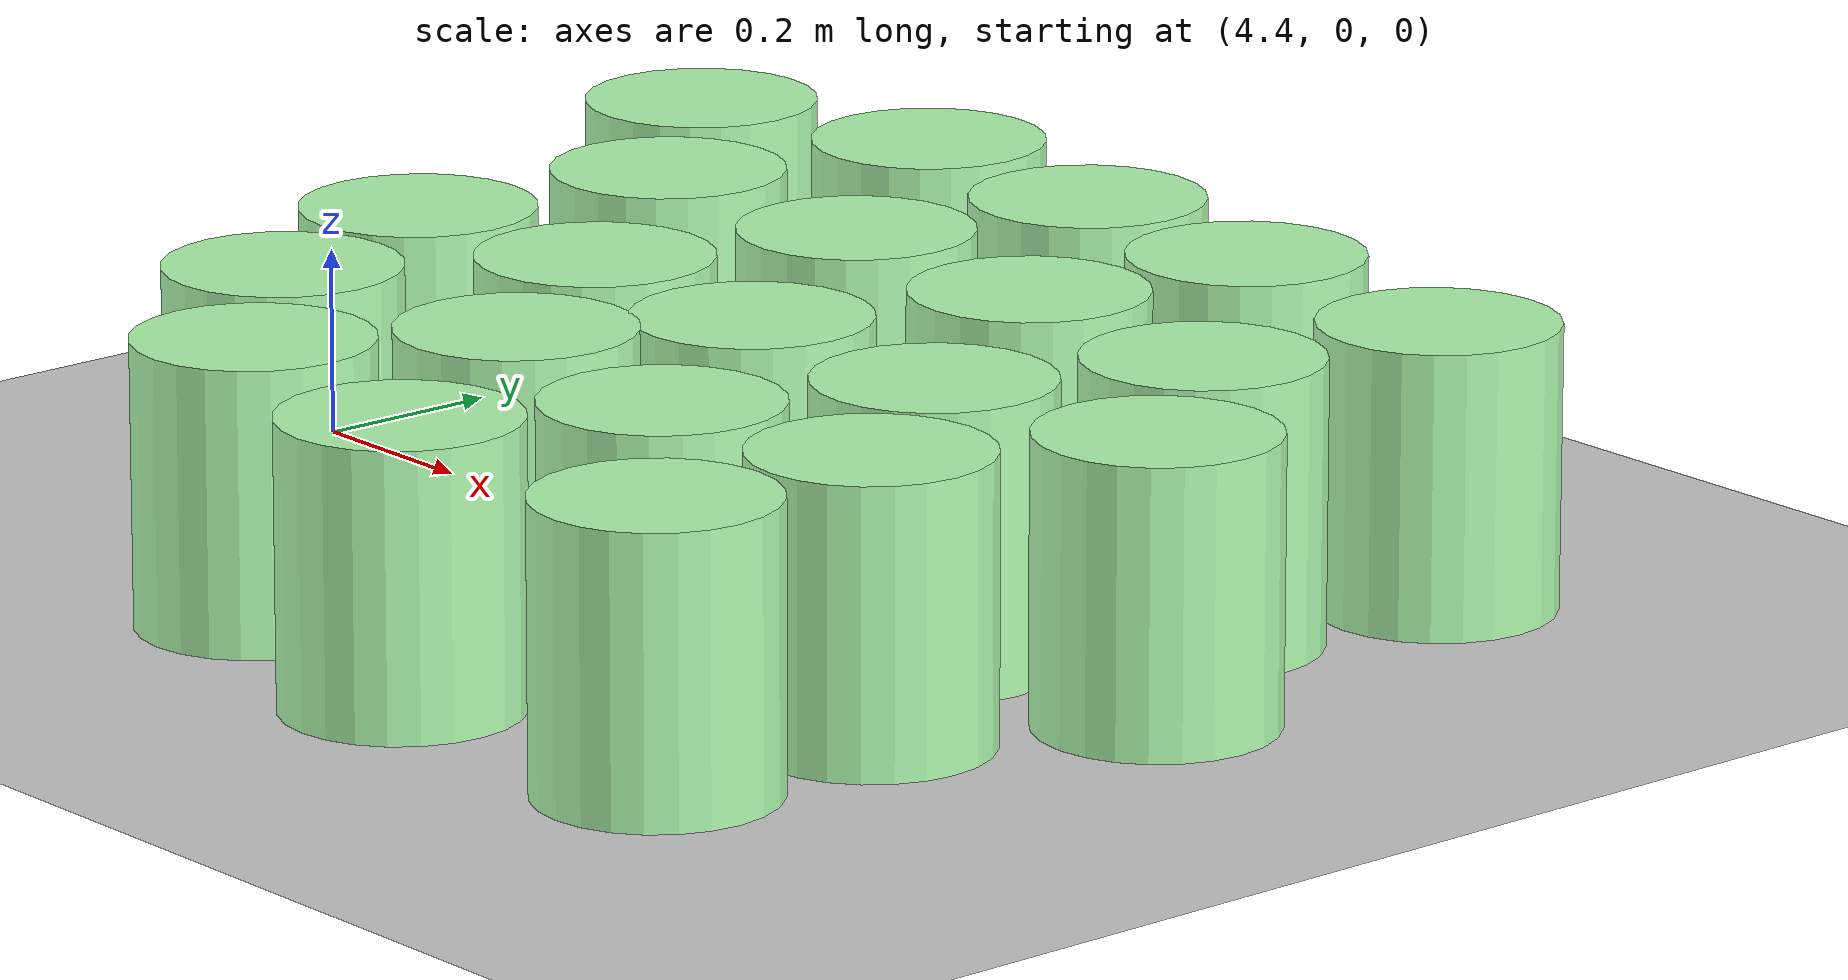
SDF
<sdf version="1.7">
 <world name="default">
  <model name="ground_plane">
   <static>1</static>
   <link name="link">
    <collision name="collision">
     <geometry><plane><normal>0 0 1</normal><size>100 100</size></plane></geometry>
     <surface><friction><ode><mu>100</mu><mu2>50</mu2></ode></friction></surface>
    </collision>
    <visual name="visual">
     <cast_shadows>0</cast_shadows>
     <geometry><plane><normal>0 0 1</normal><size>100 100</size></plane></geometry>
     <material>
      <script><uri>file://media/materials/scripts/gazebo.material</uri><name>Gazebo/Grey</name></script>
     </material>
    </visual>
   </link>
  </model>
  <model name="mhz_y_25_30_clone_0">
   <link name="link">
    <inertial>
     <mass>1</mass>
     <inertia><ixx>0.145833</ixx><ixy>0</ixy><ixz>0</ixz><iyy>0.145833</iyy><iyz>0</iyz><izz>0.125</izz></inertia>
    </inertial>
    <visual name="visual">
     <geometry><cylinder><radius>0.125</radius><length>0.3</length></cylinder></geometry>
     <material>
      <script><name>Gazebo/Grey</name><uri>file://media/materials/scripts/gazebo.material</uri></script>
      <shader type="pixel"><normal_map>__default__</normal_map></shader>
      <ambient>0 1 0 0</ambient>
      <diffuse>0.7 1 0.7 1</diffuse>
      <specular>0.01 0.01 0.01 1</specular>
      <emissive>0 0 0 1</emissive>
     </material>
    </visual>
    <collision name="collision">
     <geometry><cylinder><radius>0.125</radius><length>0.3</length></cylinder></geometry>
     <surface>
      <friction>
       <ode><mu>1</mu><mu2>1</mu2><fdir1>0 0 0</fdir1><slip1>0</slip1><slip2>0</slip2></ode>
       <torsional>
        <coefficient>1</coefficient>
        <patch_radius>0</patch_radius>
        <surface_radius>0</surface_radius>
        <use_patch_radius>1</use_patch_radius>
        <ode><slip>0</slip></ode>
       </torsional>
      </friction>
      <bounce><restitution_coefficient>0</restitution_coefficient><threshold>1e+06</threshold></bounce>
      <contact>
       <collide_without_contact>0</collide_without_contact>
       <collide_without_contact_bitmask>1</collide_without_contact_bitmask>
       <collide_bitmask>1</collide_bitmask>
       <ode>
        <soft_cfm>0</soft_cfm>
        <soft_erp>0.2</soft_erp>
        <kp>1e+13</kp>
        <kd>1</kd>
        <max_vel>0.01</max_vel>
        <min_depth>0</min_depth>
       </ode>
       <bullet>
        <split_impulse>1</split_impulse>
        <split_impulse_penetration_threshold>-0.01</split_impulse_penetration_threshold>
        <soft_cfm>0</soft_cfm>
        <soft_erp>0.2</soft_erp>
        <kp>1e+13</kp>
        <kd>1</kd>
       </bullet>
      </contact>
     </surface>
    </collision>
   </link>
   <static>1</static>
   <pose>4.64884 0.253615 0.14679 0 -0 0</pose>
  </model>
  <model name="mhz_y_25_30_clone_1">
   <link name="link">
    <inertial>
     <mass>1</mass>
     <inertia><ixx>0.145833</ixx><ixy>0</ixy><ixz>0</ixz><iyy>0.145833</iyy><iyz>0</iyz><izz>0.125</izz></inertia>
    </inertial>
    <visual name="visual">
     <geometry><cylinder><radius>0.125</radius><length>0.3</length></cylinder></geometry>
     <material>
      <script><name>Gazebo/Grey</name><uri>file://media/materials/scripts/gazebo.material</uri></script>
      <shader type="pixel"><normal_map>__default__</normal_map></shader>
      <ambient>0 1 0 0</ambient>
      <diffuse>0.7 1 0.7 1</diffuse>
      <specular>0.01 0.01 0.01 1</specular>
      <emissive>0 0 0 1</emissive>
     </material>
    </visual>
    <collision name="collision">
     <geometry><cylinder><radius>0.125</radius><length>0.3</length></cylinder></geometry>
     <surface>
      <friction>
       <ode><mu>1</mu><mu2>1</mu2><fdir1>0 0 0</fdir1><slip1>0</slip1><slip2>0</slip2></ode>
       <torsional>
        <coefficient>1</coefficient>
        <patch_radius>0</patch_radius>
        <surface_radius>0</surface_radius>
        <use_patch_radius>1</use_patch_radius>
        <ode><slip>0</slip></ode>
       </torsional>
      </friction>
      <bounce><restitution_coefficient>0</restitution_coefficient><threshold>1e+06</threshold></bounce>
      <contact>
       <collide_without_contact>0</collide_without_contact>
       <collide_without_contact_bitmask>1</collide_without_contact_bitmask>
       <collide_bitmask>1</collide_bitmask>
       <ode>
        <soft_cfm>0</soft_cfm>
        <soft_erp>0.2</soft_erp>
        <kp>1e+13</kp>
        <kd>1</kd>
        <max_vel>0.01</max_vel>
        <min_depth>0</min_depth>
       </ode>
       <bullet>
        <split_impulse>1</split_impulse>
        <split_impulse_penetration_threshold>-0.01</split_impulse_penetration_threshold>
        <soft_cfm>0</soft_cfm>
        <soft_erp>0.2</soft_erp>
        <kp>1e+13</kp>
        <kd>1</kd>
       </bullet>
      </contact>
     </surface>
    </collision>
   </link>
   <static>1</static>
   <pose>4.59567 -0.038502 0.14679 0 -0 0</pose>
  </model>
  <model name="mhz_y_25_30_clone_2">
   <link name="link">
    <inertial>
     <mass>1</mass>
     <inertia><ixx>0.145833</ixx><ixy>0</ixy><ixz>0</ixz><iyy>0.145833</iyy><iyz>0</iyz><izz>0.125</izz></inertia>
    </inertial>
    <visual name="visual">
     <geometry><cylinder><radius>0.125</radius><length>0.3</length></cylinder></geometry>
     <material>
      <script><name>Gazebo/Grey</name><uri>file://media/materials/scripts/gazebo.material</uri></script>
      <shader type="pixel"><normal_map>__default__</normal_map></shader>
      <ambient>0 1 0 0</ambient>
      <diffuse>0.7 1 0.7 1</diffuse>
      <specular>0.01 0.01 0.01 1</specular>
      <emissive>0 0 0 1</emissive>
     </material>
    </visual>
    <collision name="collision">
     <geometry><cylinder><radius>0.125</radius><length>0.3</length></cylinder></geometry>
     <surface>
      <friction>
       <ode><mu>1</mu><mu2>1</mu2><fdir1>0 0 0</fdir1><slip1>0</slip1><slip2>0</slip2></ode>
       <torsional>
        <coefficient>1</coefficient>
        <patch_radius>0</patch_radius>
        <surface_radius>0</surface_radius>
        <use_patch_radius>1</use_patch_radius>
        <ode><slip>0</slip></ode>
       </torsional>
      </friction>
      <bounce><restitution_coefficient>0</restitution_coefficient><threshold>1e+06</threshold></bounce>
      <contact>
       <collide_without_contact>0</collide_without_contact>
       <collide_without_contact_bitmask>1</collide_without_contact_bitmask>
       <collide_bitmask>1</collide_bitmask>
       <ode>
        <soft_cfm>0</soft_cfm>
        <soft_erp>0.2</soft_erp>
        <kp>1e+13</kp>
        <kd>1</kd>
        <max_vel>0.01</max_vel>
        <min_depth>0</min_depth>
       </ode>
       <bullet>
        <split_impulse>1</split_impulse>
        <split_impulse_penetration_threshold>-0.01</split_impulse_penetration_threshold>
        <soft_cfm>0</soft_cfm>
        <soft_erp>0.2</soft_erp>
        <kp>1e+13</kp>
        <kd>1</kd>
       </bullet>
      </contact>
     </surface>
    </collision>
   </link>
   <static>1</static>
   <pose>4.68343 -0.283629 0.14679 0 -0 0</pose>
  </model>
  <model name="mhz_y_25_30_clone_3">
   <link name="link">
    <inertial>
     <mass>1</mass>
     <inertia><ixx>0.145833</ixx><ixy>0</ixy><ixz>0</ixz><iyy>0.145833</iyy><iyz>0</iyz><izz>0.125</izz></inertia>
    </inertial>
    <visual name="visual">
     <geometry><cylinder><radius>0.125</radius><length>0.3</length></cylinder></geometry>
     <material>
      <script><name>Gazebo/Grey</name><uri>file://media/materials/scripts/gazebo.material</uri></script>
      <shader type="pixel"><normal_map>__default__</normal_map></shader>
      <ambient>0 1 0 0</ambient>
      <diffuse>0.7 1 0.7 1</diffuse>
      <specular>0.01 0.01 0.01 1</specular>
      <emissive>0 0 0 1</emissive>
     </material>
    </visual>
    <collision name="collision">
     <geometry><cylinder><radius>0.125</radius><length>0.3</length></cylinder></geometry>
     <surface>
      <friction>
       <ode><mu>1</mu><mu2>1</mu2><fdir1>0 0 0</fdir1><slip1>0</slip1><slip2>0</slip2></ode>
       <torsional>
        <coefficient>1</coefficient>
        <patch_radius>0</patch_radius>
        <surface_radius>0</surface_radius>
        <use_patch_radius>1</use_patch_radius>
        <ode><slip>0</slip></ode>
       </torsional>
      </friction>
      <bounce><restitution_coefficient>0</restitution_coefficient><threshold>1e+06</threshold></bounce>
      <contact>
       <collide_without_contact>0</collide_without_contact>
       <collide_without_contact_bitmask>1</collide_without_contact_bitmask>
       <collide_bitmask>1</collide_bitmask>
       <ode>
        <soft_cfm>0</soft_cfm>
        <soft_erp>0.2</soft_erp>
        <kp>1e+13</kp>
        <kd>1</kd>
        <max_vel>0.01</max_vel>
        <min_depth>0</min_depth>
       </ode>
       <bullet>
        <split_impulse>1</split_impulse>
        <split_impulse_penetration_threshold>-0.01</split_impulse_penetration_threshold>
        <soft_cfm>0</soft_cfm>
        <soft_erp>0.2</soft_erp>
        <kp>1e+13</kp>
        <kd>1</kd>
       </bullet>
      </contact>
     </surface>
    </collision>
   </link>
   <static>1</static>
   <pose>4.8605 -0.017962 0.14679 0 -0 0</pose>
  </model>
  <model name="mhz_y_25_30_clone_4">
   <link name="link">
    <inertial>
     <mass>1</mass>
     <inertia><ixx>0.145833</ixx><ixy>0</ixy><ixz>0</ixz><iyy>0.145833</iyy><iyz>0</iyz><izz>0.125</izz></inertia>
    </inertial>
    <visual name="visual">
     <geometry><cylinder><radius>0.125</radius><length>0.3</length></cylinder></geometry>
     <material>
      <script><name>Gazebo/Grey</name><uri>file://media/materials/scripts/gazebo.material</uri></script>
      <shader type="pixel"><normal_map>__default__</normal_map></shader>
      <ambient>0 1 0 0</ambient>
      <diffuse>0.7 1 0.7 1</diffuse>
      <specular>0.01 0.01 0.01 1</specular>
      <emissive>0 0 0 1</emissive>
     </material>
    </visual>
    <collision name="collision">
     <geometry><cylinder><radius>0.125</radius><length>0.3</length></cylinder></geometry>
     <surface>
      <friction>
       <ode><mu>1</mu><mu2>1</mu2><fdir1>0 0 0</fdir1><slip1>0</slip1><slip2>0</slip2></ode>
       <torsional>
        <coefficient>1</coefficient>
        <patch_radius>0</patch_radius>
        <surface_radius>0</surface_radius>
        <use_patch_radius>1</use_patch_radius>
        <ode><slip>0</slip></ode>
       </torsional>
      </friction>
      <bounce><restitution_coefficient>0</restitution_coefficient><threshold>1e+06</threshold></bounce>
      <contact>
       <collide_without_contact>0</collide_without_contact>
       <collide_without_contact_bitmask>1</collide_without_contact_bitmask>
       <collide_bitmask>1</collide_bitmask>
       <ode>
        <soft_cfm>0</soft_cfm>
        <soft_erp>0.2</soft_erp>
        <kp>1e+13</kp>
        <kd>1</kd>
        <max_vel>0.01</max_vel>
        <min_depth>0</min_depth>
       </ode>
       <bullet>
        <split_impulse>1</split_impulse>
        <split_impulse_penetration_threshold>-0.01</split_impulse_penetration_threshold>
        <soft_cfm>0</soft_cfm>
        <soft_erp>0.2</soft_erp>
        <kp>1e+13</kp>
        <kd>1</kd>
       </bullet>
      </contact>
     </surface>
    </collision>
   </link>
   <static>1</static>
   <pose>4.95601 0.250924 0.14679 0 -0 0</pose>
  </model>
  <model name="mhz_y_25_30_clone_5">
   <link name="link">
    <inertial>
     <mass>1</mass>
     <inertia><ixx>0.145833</ixx><ixy>0</ixy><ixz>0</ixz><iyy>0.145833</iyy><iyz>0</iyz><izz>0.125</izz></inertia>
    </inertial>
    <visual name="visual">
     <geometry><cylinder><radius>0.125</radius><length>0.3</length></cylinder></geometry>
     <material>
      <script><name>Gazebo/Grey</name><uri>file://media/materials/scripts/gazebo.material</uri></script>
      <shader type="pixel"><normal_map>__default__</normal_map></shader>
      <ambient>0 1 0 0</ambient>
      <diffuse>0.7 1 0.7 1</diffuse>
      <specular>0.01 0.01 0.01 1</specular>
      <emissive>0 0 0 1</emissive>
     </material>
    </visual>
    <collision name="collision">
     <geometry><cylinder><radius>0.125</radius><length>0.3</length></cylinder></geometry>
     <surface>
      <friction>
       <ode><mu>1</mu><mu2>1</mu2><fdir1>0 0 0</fdir1><slip1>0</slip1><slip2>0</slip2></ode>
       <torsional>
        <coefficient>1</coefficient>
        <patch_radius>0</patch_radius>
        <surface_radius>0</surface_radius>
        <use_patch_radius>1</use_patch_radius>
        <ode><slip>0</slip></ode>
       </torsional>
      </friction>
      <bounce><restitution_coefficient>0</restitution_coefficient><threshold>1e+06</threshold></bounce>
      <contact>
       <collide_without_contact>0</collide_without_contact>
       <collide_without_contact_bitmask>1</collide_without_contact_bitmask>
       <collide_bitmask>1</collide_bitmask>
       <ode>
        <soft_cfm>0</soft_cfm>
        <soft_erp>0.2</soft_erp>
        <kp>1e+13</kp>
        <kd>1</kd>
        <max_vel>0.01</max_vel>
        <min_depth>0</min_depth>
       </ode>
       <bullet>
        <split_impulse>1</split_impulse>
        <split_impulse_penetration_threshold>-0.01</split_impulse_penetration_threshold>
        <soft_cfm>0</soft_cfm>
        <soft_erp>0.2</soft_erp>
        <kp>1e+13</kp>
        <kd>1</kd>
       </bullet>
      </contact>
     </surface>
    </collision>
   </link>
   <static>1</static>
   <pose>5.01663 -0.24731 0.14679 0 -0 0</pose>
  </model>
  <model name="mhz_y_25_30_clone_6">
   <link name="link">
    <inertial>
     <mass>1</mass>
     <inertia><ixx>0.145833</ixx><ixy>0</ixy><ixz>0</ixz><iyy>0.145833</iyy><iyz>0</iyz><izz>0.125</izz></inertia>
    </inertial>
    <visual name="visual">
     <geometry><cylinder><radius>0.125</radius><length>0.3</length></cylinder></geometry>
     <material>
      <script><name>Gazebo/Grey</name><uri>file://media/materials/scripts/gazebo.material</uri></script>
      <shader type="pixel"><normal_map>__default__</normal_map></shader>
      <ambient>0 1 0 0</ambient>
      <diffuse>0.7 1 0.7 1</diffuse>
      <specular>0.01 0.01 0.01 1</specular>
      <emissive>0 0 0 1</emissive>
     </material>
    </visual>
    <collision name="collision">
     <geometry><cylinder><radius>0.125</radius><length>0.3</length></cylinder></geometry>
     <surface>
      <friction>
       <ode><mu>1</mu><mu2>1</mu2><fdir1>0 0 0</fdir1><slip1>0</slip1><slip2>0</slip2></ode>
       <torsional>
        <coefficient>1</coefficient>
        <patch_radius>0</patch_radius>
        <surface_radius>0</surface_radius>
        <use_patch_radius>1</use_patch_radius>
        <ode><slip>0</slip></ode>
       </torsional>
      </friction>
      <bounce><restitution_coefficient>0</restitution_coefficient><threshold>1e+06</threshold></bounce>
      <contact>
       <collide_without_contact>0</collide_without_contact>
       <collide_without_contact_bitmask>1</collide_without_contact_bitmask>
       <collide_bitmask>1</collide_bitmask>
       <ode>
        <soft_cfm>0</soft_cfm>
        <soft_erp>0.2</soft_erp>
        <kp>1e+13</kp>
        <kd>1</kd>
        <max_vel>0.01</max_vel>
        <min_depth>0</min_depth>
       </ode>
       <bullet>
        <split_impulse>1</split_impulse>
        <split_impulse_penetration_threshold>-0.01</split_impulse_penetration_threshold>
        <soft_cfm>0</soft_cfm>
        <soft_erp>0.2</soft_erp>
        <kp>1e+13</kp>
        <kd>1</kd>
       </bullet>
      </contact>
     </surface>
    </collision>
   </link>
   <static>1</static>
   <pose>5.13701 -0.040934 0.14679 0 -0 0</pose>
  </model>
  <model name="mhz_y_25_30_clone_7">
   <link name="link">
    <inertial>
     <mass>1</mass>
     <inertia><ixx>0.145833</ixx><ixy>0</ixy><ixz>0</ixz><iyy>0.145833</iyy><iyz>0</iyz><izz>0.125</izz></inertia>
    </inertial>
    <visual name="visual">
     <geometry><cylinder><radius>0.125</radius><length>0.3</length></cylinder></geometry>
     <material>
      <script><name>Gazebo/Grey</name><uri>file://media/materials/scripts/gazebo.material</uri></script>
      <shader type="pixel"><normal_map>__default__</normal_map></shader>
      <ambient>0 1 0 0</ambient>
      <diffuse>0.7 1 0.7 1</diffuse>
      <specular>0.01 0.01 0.01 1</specular>
      <emissive>0 0 0 1</emissive>
     </material>
    </visual>
    <collision name="collision">
     <geometry><cylinder><radius>0.125</radius><length>0.3</length></cylinder></geometry>
     <surface>
      <friction>
       <ode><mu>1</mu><mu2>1</mu2><fdir1>0 0 0</fdir1><slip1>0</slip1><slip2>0</slip2></ode>
       <torsional>
        <coefficient>1</coefficient>
        <patch_radius>0</patch_radius>
        <surface_radius>0</surface_radius>
        <use_patch_radius>1</use_patch_radius>
        <ode><slip>0</slip></ode>
       </torsional>
      </friction>
      <bounce><restitution_coefficient>0</restitution_coefficient><threshold>1e+06</threshold></bounce>
      <contact>
       <collide_without_contact>0</collide_without_contact>
       <collide_without_contact_bitmask>1</collide_without_contact_bitmask>
       <collide_bitmask>1</collide_bitmask>
       <ode>
        <soft_cfm>0</soft_cfm>
        <soft_erp>0.2</soft_erp>
        <kp>1e+13</kp>
        <kd>1</kd>
        <max_vel>0.01</max_vel>
        <min_depth>0</min_depth>
       </ode>
       <bullet>
        <split_impulse>1</split_impulse>
        <split_impulse_penetration_threshold>-0.01</split_impulse_penetration_threshold>
        <soft_cfm>0</soft_cfm>
        <soft_erp>0.2</soft_erp>
        <kp>1e+13</kp>
        <kd>1</kd>
       </bullet>
      </contact>
     </surface>
    </collision>
   </link>
   <static>1</static>
   <pose>5.24581 0.233324 0.14679 0 -0 0</pose>
  </model>
  <model name="mhz_y_25_30_clone_8">
   <link name="link">
    <inertial>
     <mass>1</mass>
     <inertia><ixx>0.145833</ixx><ixy>0</ixy><ixz>0</ixz><iyy>0.145833</iyy><iyz>0</iyz><izz>0.125</izz></inertia>
    </inertial>
    <visual name="visual">
     <geometry><cylinder><radius>0.125</radius><length>0.3</length></cylinder></geometry>
     <material>
      <script><name>Gazebo/Grey</name><uri>file://media/materials/scripts/gazebo.material</uri></script>
      <shader type="pixel"><normal_map>__default__</normal_map></shader>
      <ambient>0 1 0 0</ambient>
      <diffuse>0.7 1 0.7 1</diffuse>
      <specular>0.01 0.01 0.01 1</specular>
      <emissive>0 0 0 1</emissive>
     </material>
    </visual>
    <collision name="collision">
     <geometry><cylinder><radius>0.125</radius><length>0.3</length></cylinder></geometry>
     <surface>
      <friction>
       <ode><mu>1</mu><mu2>1</mu2><fdir1>0 0 0</fdir1><slip1>0</slip1><slip2>0</slip2></ode>
       <torsional>
        <coefficient>1</coefficient>
        <patch_radius>0</patch_radius>
        <surface_radius>0</surface_radius>
        <use_patch_radius>1</use_patch_radius>
        <ode><slip>0</slip></ode>
       </torsional>
      </friction>
      <bounce><restitution_coefficient>0</restitution_coefficient><threshold>1e+06</threshold></bounce>
      <contact>
       <collide_without_contact>0</collide_without_contact>
       <collide_without_contact_bitmask>1</collide_without_contact_bitmask>
       <collide_bitmask>1</collide_bitmask>
       <ode>
        <soft_cfm>0</soft_cfm>
        <soft_erp>0.2</soft_erp>
        <kp>1e+13</kp>
        <kd>1</kd>
        <max_vel>0.01</max_vel>
        <min_depth>0</min_depth>
       </ode>
       <bullet>
        <split_impulse>1</split_impulse>
        <split_impulse_penetration_threshold>-0.01</split_impulse_penetration_threshold>
        <soft_cfm>0</soft_cfm>
        <soft_erp>0.2</soft_erp>
        <kp>1e+13</kp>
        <kd>1</kd>
       </bullet>
      </contact>
     </surface>
    </collision>
   </link>
   <static>1</static>
   <pose>5.42605 -0.04916 0.14679 0 -0 0</pose>
  </model>
  <model name="mhz_y_25_30_clone_9">
   <link name="link">
    <inertial>
     <mass>1</mass>
     <inertia><ixx>0.145833</ixx><ixy>0</ixy><ixz>0</ixz><iyy>0.145833</iyy><iyz>0</iyz><izz>0.125</izz></inertia>
    </inertial>
    <visual name="visual">
     <geometry><cylinder><radius>0.125</radius><length>0.3</length></cylinder></geometry>
     <material>
      <script><name>Gazebo/Grey</name><uri>file://media/materials/scripts/gazebo.material</uri></script>
      <shader type="pixel"><normal_map>__default__</normal_map></shader>
      <ambient>0 1 0 0</ambient>
      <diffuse>0.7 1 0.7 1</diffuse>
      <specular>0.01 0.01 0.01 1</specular>
      <emissive>0 0 0 1</emissive>
     </material>
    </visual>
    <collision name="collision">
     <geometry><cylinder><radius>0.125</radius><length>0.3</length></cylinder></geometry>
     <surface>
      <friction>
       <ode><mu>1</mu><mu2>1</mu2><fdir1>0 0 0</fdir1><slip1>0</slip1><slip2>0</slip2></ode>
       <torsional>
        <coefficient>1</coefficient>
        <patch_radius>0</patch_radius>
        <surface_radius>0</surface_radius>
        <use_patch_radius>1</use_patch_radius>
        <ode><slip>0</slip></ode>
       </torsional>
      </friction>
      <bounce><restitution_coefficient>0</restitution_coefficient><threshold>1e+06</threshold></bounce>
      <contact>
       <collide_without_contact>0</collide_without_contact>
       <collide_without_contact_bitmask>1</collide_without_contact_bitmask>
       <collide_bitmask>1</collide_bitmask>
       <ode>
        <soft_cfm>0</soft_cfm>
        <soft_erp>0.2</soft_erp>
        <kp>1e+13</kp>
        <kd>1</kd>
        <max_vel>0.01</max_vel>
        <min_depth>0</min_depth>
       </ode>
       <bullet>
        <split_impulse>1</split_impulse>
        <split_impulse_penetration_threshold>-0.01</split_impulse_penetration_threshold>
        <soft_cfm>0</soft_cfm>
        <soft_erp>0.2</soft_erp>
        <kp>1e+13</kp>
        <kd>1</kd>
       </bullet>
      </contact>
     </surface>
    </collision>
   </link>
   <static>1</static>
   <pose>5.53978 0.204382 0.14679 0 -0 0</pose>
  </model>
  <model name="mhz_y_25_30_clone_10">
   <link name="link">
    <inertial>
     <mass>1</mass>
     <inertia><ixx>0.145833</ixx><ixy>0</ixy><ixz>0</ixz><iyy>0.145833</iyy><iyz>0</iyz><izz>0.125</izz></inertia>
    </inertial>
    <visual name="visual">
     <geometry><cylinder><radius>0.125</radius><length>0.3</length></cylinder></geometry>
     <material>
      <script><name>Gazebo/Grey</name><uri>file://media/materials/scripts/gazebo.material</uri></script>
      <shader type="pixel"><normal_map>__default__</normal_map></shader>
      <ambient>0 1 0 0</ambient>
      <diffuse>0.7 1 0.7 1</diffuse>
      <specular>0.01 0.01 0.01 1</specular>
      <emissive>0 0 0 1</emissive>
     </material>
    </visual>
    <collision name="collision">
     <geometry><cylinder><radius>0.125</radius><length>0.3</length></cylinder></geometry>
     <surface>
      <friction>
       <ode><mu>1</mu><mu2>1</mu2><fdir1>0 0 0</fdir1><slip1>0</slip1><slip2>0</slip2></ode>
       <torsional>
        <coefficient>1</coefficient>
        <patch_radius>0</patch_radius>
        <surface_radius>0</surface_radius>
        <use_patch_radius>1</use_patch_radius>
        <ode><slip>0</slip></ode>
       </torsional>
      </friction>
      <bounce><restitution_coefficient>0</restitution_coefficient><threshold>1e+06</threshold></bounce>
      <contact>
       <collide_without_contact>0</collide_without_contact>
       <collide_without_contact_bitmask>1</collide_without_contact_bitmask>
       <collide_bitmask>1</collide_bitmask>
       <ode>
        <soft_cfm>0</soft_cfm>
        <soft_erp>0.2</soft_erp>
        <kp>1e+13</kp>
        <kd>1</kd>
        <max_vel>0.01</max_vel>
        <min_depth>0</min_depth>
       </ode>
       <bullet>
        <split_impulse>1</split_impulse>
        <split_impulse_penetration_threshold>-0.01</split_impulse_penetration_threshold>
        <soft_cfm>0</soft_cfm>
        <soft_erp>0.2</soft_erp>
        <kp>1e+13</kp>
        <kd>1</kd>
       </bullet>
      </contact>
     </surface>
    </collision>
   </link>
   <static>1</static>
   <pose>5.31226 -0.302685 0.14679 0 -0 0</pose>
  </model>
  <model name="mhz_y_25_30_clone_11">
   <link name="link">
    <inertial>
     <mass>1</mass>
     <inertia><ixx>0.145833</ixx><ixy>0</ixy><ixz>0</ixz><iyy>0.145833</iyy><iyz>0</iyz><izz>0.125</izz></inertia>
    </inertial>
    <visual name="visual">
     <geometry><cylinder><radius>0.125</radius><length>0.3</length></cylinder></geometry>
     <material>
      <script><name>Gazebo/Grey</name><uri>file://media/materials/scripts/gazebo.material</uri></script>
      <shader type="pixel"><normal_map>__default__</normal_map></shader>
      <ambient>0 1 0 0</ambient>
      <diffuse>0.7 1 0.7 1</diffuse>
      <specular>0.01 0.01 0.01 1</specular>
      <emissive>0 0 0 1</emissive>
     </material>
    </visual>
    <collision name="collision">
     <geometry><cylinder><radius>0.125</radius><length>0.3</length></cylinder></geometry>
     <surface>
      <friction>
       <ode><mu>1</mu><mu2>1</mu2><fdir1>0 0 0</fdir1><slip1>0</slip1><slip2>0</slip2></ode>
       <torsional>
        <coefficient>1</coefficient>
        <patch_radius>0</patch_radius>
        <surface_radius>0</surface_radius>
        <use_patch_radius>1</use_patch_radius>
        <ode><slip>0</slip></ode>
       </torsional>
      </friction>
      <bounce><restitution_coefficient>0</restitution_coefficient><threshold>1e+06</threshold></bounce>
      <contact>
       <collide_without_contact>0</collide_without_contact>
       <collide_without_contact_bitmask>1</collide_without_contact_bitmask>
       <collide_bitmask>1</collide_bitmask>
       <ode>
        <soft_cfm>0</soft_cfm>
        <soft_erp>0.2</soft_erp>
        <kp>1e+13</kp>
        <kd>1</kd>
        <max_vel>0.01</max_vel>
        <min_depth>0</min_depth>
       </ode>
       <bullet>
        <split_impulse>1</split_impulse>
        <split_impulse_penetration_threshold>-0.01</split_impulse_penetration_threshold>
        <soft_cfm>0</soft_cfm>
        <soft_erp>0.2</soft_erp>
        <kp>1e+13</kp>
        <kd>1</kd>
       </bullet>
      </contact>
     </surface>
    </collision>
   </link>
   <static>1</static>
   <pose>5.5742 -0.257618 0.14679 0 -0 0</pose>
  </model>
  <model name="mhz_y_25_30_clone_12">
   <link name="link">
    <inertial>
     <mass>1</mass>
     <inertia><ixx>0.145833</ixx><ixy>0</ixy><ixz>0</ixz><iyy>0.145833</iyy><iyz>0</iyz><izz>0.125</izz></inertia>
    </inertial>
    <visual name="visual">
     <geometry><cylinder><radius>0.125</radius><length>0.3</length></cylinder></geometry>
     <material>
      <script><name>Gazebo/Grey</name><uri>file://media/materials/scripts/gazebo.material</uri></script>
      <shader type="pixel"><normal_map>__default__</normal_map></shader>
      <ambient>0 1 0 0</ambient>
      <diffuse>0.7 1 0.7 1</diffuse>
      <specular>0.01 0.01 0.01 1</specular>
      <emissive>0 0 0 1</emissive>
     </material>
    </visual>
    <collision name="collision">
     <geometry><cylinder><radius>0.125</radius><length>0.3</length></cylinder></geometry>
     <surface>
      <friction>
       <ode><mu>1</mu><mu2>1</mu2><fdir1>0 0 0</fdir1><slip1>0</slip1><slip2>0</slip2></ode>
       <torsional>
        <coefficient>1</coefficient>
        <patch_radius>0</patch_radius>
        <surface_radius>0</surface_radius>
        <use_patch_radius>1</use_patch_radius>
        <ode><slip>0</slip></ode>
       </torsional>
      </friction>
      <bounce><restitution_coefficient>0</restitution_coefficient><threshold>1e+06</threshold></bounce>
      <contact>
       <collide_without_contact>0</collide_without_contact>
       <collide_without_contact_bitmask>1</collide_without_contact_bitmask>
       <collide_bitmask>1</collide_bitmask>
       <ode>
        <soft_cfm>0</soft_cfm>
        <soft_erp>0.2</soft_erp>
        <kp>1e+13</kp>
        <kd>1</kd>
        <max_vel>0.01</max_vel>
        <min_depth>0</min_depth>
       </ode>
       <bullet>
        <split_impulse>1</split_impulse>
        <split_impulse_penetration_threshold>-0.01</split_impulse_penetration_threshold>
        <soft_cfm>0</soft_cfm>
        <soft_erp>0.2</soft_erp>
        <kp>1e+13</kp>
        <kd>1</kd>
       </bullet>
      </contact>
     </surface>
    </collision>
   </link>
   <static>1</static>
   <pose>5.70709 -0.005619 0.14679 0 -0 0</pose>
  </model>
  <model name="mhz_y_25_30_clone_14">
   <link name="link">
    <inertial>
     <mass>1</mass>
     <inertia><ixx>0.145833</ixx><ixy>0</ixy><ixz>0</ixz><iyy>0.145833</iyy><iyz>0</iyz><izz>0.125</izz></inertia>
    </inertial>
    <visual name="visual">
     <geometry><cylinder><radius>0.125</radius><length>0.3</length></cylinder></geometry>
     <material>
      <script><name>Gazebo/Grey</name><uri>file://media/materials/scripts/gazebo.material</uri></script>
      <shader type="pixel"><normal_map>__default__</normal_map></shader>
      <ambient>0 1 0 0</ambient>
      <diffuse>0.7 1 0.7 1</diffuse>
      <specular>0.01 0.01 0.01 1</specular>
      <emissive>0 0 0 1</emissive>
     </material>
    </visual>
    <collision name="collision">
     <geometry><cylinder><radius>0.125</radius><length>0.3</length></cylinder></geometry>
     <surface>
      <friction>
       <ode><mu>1</mu><mu2>1</mu2><fdir1>0 0 0</fdir1><slip1>0</slip1><slip2>0</slip2></ode>
       <torsional>
        <coefficient>1</coefficient>
        <patch_radius>0</patch_radius>
        <surface_radius>0</surface_radius>
        <use_patch_radius>1</use_patch_radius>
        <ode><slip>0</slip></ode>
       </torsional>
      </friction>
      <bounce><restitution_coefficient>0</restitution_coefficient><threshold>1e+06</threshold></bounce>
      <contact>
       <collide_without_contact>0</collide_without_contact>
       <collide_without_contact_bitmask>1</collide_without_contact_bitmask>
       <collide_bitmask>1</collide_bitmask>
       <ode>
        <soft_cfm>0</soft_cfm>
        <soft_erp>0.2</soft_erp>
        <kp>1e+13</kp>
        <kd>1</kd>
        <max_vel>0.01</max_vel>
        <min_depth>0</min_depth>
       </ode>
       <bullet>
        <split_impulse>1</split_impulse>
        <split_impulse_penetration_threshold>-0.01</split_impulse_penetration_threshold>
        <soft_cfm>0</soft_cfm>
        <soft_erp>0.2</soft_erp>
        <kp>1e+13</kp>
        <kd>1</kd>
       </bullet>
      </contact>
     </surface>
    </collision>
   </link>
   <static>1</static>
   <pose>4.45244 0.462217 0.14679 0 -0 0</pose>
  </model>
  <model name="mhz_y_25_30_clone_15">
   <link name="link">
    <inertial>
     <mass>1</mass>
     <inertia><ixx>0.145833</ixx><ixy>0</ixy><ixz>0</ixz><iyy>0.145833</iyy><iyz>0</iyz><izz>0.125</izz></inertia>
    </inertial>
    <visual name="visual">
     <geometry><cylinder><radius>0.125</radius><length>0.3</length></cylinder></geometry>
     <material>
      <script><name>Gazebo/Grey</name><uri>file://media/materials/scripts/gazebo.material</uri></script>
      <shader type="pixel"><normal_map>__default__</normal_map></shader>
      <ambient>0 1 0 0</ambient>
      <diffuse>0.7 1 0.7 1</diffuse>
      <specular>0.01 0.01 0.01 1</specular>
      <emissive>0 0 0 1</emissive>
     </material>
    </visual>
    <collision name="collision">
     <geometry><cylinder><radius>0.125</radius><length>0.3</length></cylinder></geometry>
     <surface>
      <friction>
       <ode><mu>1</mu><mu2>1</mu2><fdir1>0 0 0</fdir1><slip1>0</slip1><slip2>0</slip2></ode>
       <torsional>
        <coefficient>1</coefficient>
        <patch_radius>0</patch_radius>
        <surface_radius>0</surface_radius>
        <use_patch_radius>1</use_patch_radius>
        <ode><slip>0</slip></ode>
       </torsional>
      </friction>
      <bounce><restitution_coefficient>0</restitution_coefficient><threshold>1e+06</threshold></bounce>
      <contact>
       <collide_without_contact>0</collide_without_contact>
       <collide_without_contact_bitmask>1</collide_without_contact_bitmask>
       <collide_bitmask>1</collide_bitmask>
       <ode>
        <soft_cfm>0</soft_cfm>
        <soft_erp>0.2</soft_erp>
        <kp>1e+13</kp>
        <kd>1</kd>
        <max_vel>0.01</max_vel>
        <min_depth>0</min_depth>
       </ode>
       <bullet>
        <split_impulse>1</split_impulse>
        <split_impulse_penetration_threshold>-0.01</split_impulse_penetration_threshold>
        <soft_cfm>0</soft_cfm>
        <soft_erp>0.2</soft_erp>
        <kp>1e+13</kp>
        <kd>1</kd>
       </bullet>
      </contact>
     </surface>
    </collision>
   </link>
   <static>1</static>
   <pose>4.87607 -0.469961 0.14679 0 -0 0</pose>
  </model>
  <model name="mhz_y_25_30_clone_16">
   <link name="link">
    <inertial>
     <mass>1</mass>
     <inertia><ixx>0.145833</ixx><ixy>0</ixy><ixz>0</ixz><iyy>0.145833</iyy><iyz>0</iyz><izz>0.125</izz></inertia>
    </inertial>
    <visual name="visual">
     <geometry><cylinder><radius>0.125</radius><length>0.3</length></cylinder></geometry>
     <material>
      <script><name>Gazebo/Grey</name><uri>file://media/materials/scripts/gazebo.material</uri></script>
      <shader type="pixel"><normal_map>__default__</normal_map></shader>
      <ambient>0 1 0 0</ambient>
      <diffuse>0.7 1 0.7 1</diffuse>
      <specular>0.01 0.01 0.01 1</specular>
      <emissive>0 0 0 1</emissive>
     </material>
    </visual>
    <collision name="collision">
     <geometry><cylinder><radius>0.125</radius><length>0.3</length></cylinder></geometry>
     <surface>
      <friction>
       <ode><mu>1</mu><mu2>1</mu2><fdir1>0 0 0</fdir1><slip1>0</slip1><slip2>0</slip2></ode>
       <torsional>
        <coefficient>1</coefficient>
        <patch_radius>0</patch_radius>
        <surface_radius>0</surface_radius>
        <use_patch_radius>1</use_patch_radius>
        <ode><slip>0</slip></ode>
       </torsional>
      </friction>
      <bounce><restitution_coefficient>0</restitution_coefficient><threshold>1e+06</threshold></bounce>
      <contact>
       <collide_without_contact>0</collide_without_contact>
       <collide_without_contact_bitmask>1</collide_without_contact_bitmask>
       <collide_bitmask>1</collide_bitmask>
       <ode>
        <soft_cfm>0</soft_cfm>
        <soft_erp>0.2</soft_erp>
        <kp>1e+13</kp>
        <kd>1</kd>
        <max_vel>0.01</max_vel>
        <min_depth>0</min_depth>
       </ode>
       <bullet>
        <split_impulse>1</split_impulse>
        <split_impulse_penetration_threshold>-0.01</split_impulse_penetration_threshold>
        <soft_cfm>0</soft_cfm>
        <soft_erp>0.2</soft_erp>
        <kp>1e+13</kp>
        <kd>1</kd>
       </bullet>
      </contact>
     </surface>
    </collision>
   </link>
   <static>1</static>
   <pose>5.18753 -0.530712 0.14679 0 -0 0</pose>
  </model>
  <model name="mhz_y_25_30_clone_17">
   <link name="link">
    <inertial>
     <mass>1</mass>
     <inertia><ixx>0.145833</ixx><ixy>0</ixy><ixz>0</ixz><iyy>0.145833</iyy><iyz>0</iyz><izz>0.125</izz></inertia>
    </inertial>
    <visual name="visual">
     <geometry><cylinder><radius>0.125</radius><length>0.3</length></cylinder></geometry>
     <material>
      <script><name>Gazebo/Grey</name><uri>file://media/materials/scripts/gazebo.material</uri></script>
      <shader type="pixel"><normal_map>__default__</normal_map></shader>
      <ambient>0 1 0 0</ambient>
      <diffuse>0.7 1 0.7 1</diffuse>
      <specular>0.01 0.01 0.01 1</specular>
      <emissive>0 0 0 1</emissive>
     </material>
    </visual>
    <collision name="collision">
     <geometry><cylinder><radius>0.125</radius><length>0.3</length></cylinder></geometry>
     <surface>
      <friction>
       <ode><mu>1</mu><mu2>1</mu2><fdir1>0 0 0</fdir1><slip1>0</slip1><slip2>0</slip2></ode>
       <torsional>
        <coefficient>1</coefficient>
        <patch_radius>0</patch_radius>
        <surface_radius>0</surface_radius>
        <use_patch_radius>1</use_patch_radius>
        <ode><slip>0</slip></ode>
       </torsional>
      </friction>
      <bounce><restitution_coefficient>0</restitution_coefficient><threshold>1e+06</threshold></bounce>
      <contact>
       <collide_without_contact>0</collide_without_contact>
       <collide_without_contact_bitmask>1</collide_without_contact_bitmask>
       <collide_bitmask>1</collide_bitmask>
       <ode>
        <soft_cfm>0</soft_cfm>
        <soft_erp>0.2</soft_erp>
        <kp>1e+13</kp>
        <kd>1</kd>
        <max_vel>0.01</max_vel>
        <min_depth>0</min_depth>
       </ode>
       <bullet>
        <split_impulse>1</split_impulse>
        <split_impulse_penetration_threshold>-0.01</split_impulse_penetration_threshold>
        <soft_cfm>0</soft_cfm>
        <soft_erp>0.2</soft_erp>
        <kp>1e+13</kp>
        <kd>1</kd>
       </bullet>
      </contact>
     </surface>
    </collision>
   </link>
   <static>1</static>
   <pose>5.55702 -0.512298 0.14679 0 -0 0</pose>
  </model>
  <model name="mhz_y_25_30_clone_18">
   <link name="link">
    <inertial>
     <mass>1</mass>
     <inertia><ixx>0.145833</ixx><ixy>0</ixy><ixz>0</ixz><iyy>0.145833</iyy><iyz>0</iyz><izz>0.125</izz></inertia>
    </inertial>
    <visual name="visual">
     <geometry><cylinder><radius>0.125</radius><length>0.3</length></cylinder></geometry>
     <material>
      <script><name>Gazebo/Grey</name><uri>file://media/materials/scripts/gazebo.material</uri></script>
      <shader type="pixel"><normal_map>__default__</normal_map></shader>
      <ambient>0 1 0 0</ambient>
      <diffuse>0.7 1 0.7 1</diffuse>
      <specular>0.01 0.01 0.01 1</specular>
      <emissive>0 0 0 1</emissive>
     </material>
    </visual>
    <collision name="collision">
     <geometry><cylinder><radius>0.125</radius><length>0.3</length></cylinder></geometry>
     <surface>
      <friction>
       <ode><mu>1</mu><mu2>1</mu2><fdir1>0 0 0</fdir1><slip1>0</slip1><slip2>0</slip2></ode>
       <torsional>
        <coefficient>1</coefficient>
        <patch_radius>0</patch_radius>
        <surface_radius>0</surface_radius>
        <use_patch_radius>1</use_patch_radius>
        <ode><slip>0</slip></ode>
       </torsional>
      </friction>
      <bounce><restitution_coefficient>0</restitution_coefficient><threshold>1e+06</threshold></bounce>
      <contact>
       <collide_without_contact>0</collide_without_contact>
       <collide_without_contact_bitmask>1</collide_without_contact_bitmask>
       <collide_bitmask>1</collide_bitmask>
       <ode>
        <soft_cfm>0</soft_cfm>
        <soft_erp>0.2</soft_erp>
        <kp>1e+13</kp>
        <kd>1</kd>
        <max_vel>0.01</max_vel>
        <min_depth>0</min_depth>
       </ode>
       <bullet>
        <split_impulse>1</split_impulse>
        <split_impulse_penetration_threshold>-0.01</split_impulse_penetration_threshold>
        <soft_cfm>0</soft_cfm>
        <soft_erp>0.2</soft_erp>
        <kp>1e+13</kp>
        <kd>1</kd>
       </bullet>
      </contact>
     </surface>
    </collision>
   </link>
   <static>1</static>
   <pose>4.73695 0.538559 0.14679 0 -0 0</pose>
  </model>
  <model name="mhz_y_25_30_clone_19">
   <link name="link">
    <inertial>
     <mass>1</mass>
     <inertia><ixx>0.145833</ixx><ixy>0</ixy><ixz>0</ixz><iyy>0.145833</iyy><iyz>0</iyz><izz>0.125</izz></inertia>
    </inertial>
    <visual name="visual">
     <geometry><cylinder><radius>0.125</radius><length>0.3</length></cylinder></geometry>
     <material>
      <script><name>Gazebo/Grey</name><uri>file://media/materials/scripts/gazebo.material</uri></script>
      <shader type="pixel"><normal_map>__default__</normal_map></shader>
      <ambient>0 1 0 0</ambient>
      <diffuse>0.7 1 0.7 1</diffuse>
      <specular>0.01 0.01 0.01 1</specular>
      <emissive>0 0 0 1</emissive>
     </material>
    </visual>
    <collision name="collision">
     <geometry><cylinder><radius>0.125</radius><length>0.3</length></cylinder></geometry>
     <surface>
      <friction>
       <ode><mu>1</mu><mu2>1</mu2><fdir1>0 0 0</fdir1><slip1>0</slip1><slip2>0</slip2></ode>
       <torsional>
        <coefficient>1</coefficient>
        <patch_radius>0</patch_radius>
        <surface_radius>0</surface_radius>
        <use_patch_radius>1</use_patch_radius>
        <ode><slip>0</slip></ode>
       </torsional>
      </friction>
      <bounce><restitution_coefficient>0</restitution_coefficient><threshold>1e+06</threshold></bounce>
      <contact>
       <collide_without_contact>0</collide_without_contact>
       <collide_without_contact_bitmask>1</collide_without_contact_bitmask>
       <collide_bitmask>1</collide_bitmask>
       <ode>
        <soft_cfm>0</soft_cfm>
        <soft_erp>0.2</soft_erp>
        <kp>1e+13</kp>
        <kd>1</kd>
        <max_vel>0.01</max_vel>
        <min_depth>0</min_depth>
       </ode>
       <bullet>
        <split_impulse>1</split_impulse>
        <split_impulse_penetration_threshold>-0.01</split_impulse_penetration_threshold>
        <soft_cfm>0</soft_cfm>
        <soft_erp>0.2</soft_erp>
        <kp>1e+13</kp>
        <kd>1</kd>
       </bullet>
      </contact>
     </surface>
    </collision>
   </link>
   <static>1</static>
   <pose>5.01926 0.513098 0.14679 0 -0 0</pose>
  </model>
  <model name="mhz_y_25_30_clone_20">
   <link name="link">
    <inertial>
     <mass>1</mass>
     <inertia><ixx>0.145833</ixx><ixy>0</ixy><ixz>0</ixz><iyy>0.145833</iyy><iyz>0</iyz><izz>0.125</izz></inertia>
    </inertial>
    <visual name="visual">
     <geometry><cylinder><radius>0.125</radius><length>0.3</length></cylinder></geometry>
     <material>
      <script><name>Gazebo/Grey</name><uri>file://media/materials/scripts/gazebo.material</uri></script>
      <shader type="pixel"><normal_map>__default__</normal_map></shader>
      <ambient>0 1 0 0</ambient>
      <diffuse>0.7 1 0.7 1</diffuse>
      <specular>0.01 0.01 0.01 1</specular>
      <emissive>0 0 0 1</emissive>
     </material>
    </visual>
    <collision name="collision">
     <geometry><cylinder><radius>0.125</radius><length>0.3</length></cylinder></geometry>
     <surface>
      <friction>
       <ode><mu>1</mu><mu2>1</mu2><fdir1>0 0 0</fdir1><slip1>0</slip1><slip2>0</slip2></ode>
       <torsional>
        <coefficient>1</coefficient>
        <patch_radius>0</patch_radius>
        <surface_radius>0</surface_radius>
        <use_patch_radius>1</use_patch_radius>
        <ode><slip>0</slip></ode>
       </torsional>
      </friction>
      <bounce><restitution_coefficient>0</restitution_coefficient><threshold>1e+06</threshold></bounce>
      <contact>
       <collide_without_contact>0</collide_without_contact>
       <collide_without_contact_bitmask>1</collide_without_contact_bitmask>
       <collide_bitmask>1</collide_bitmask>
       <ode>
        <soft_cfm>0</soft_cfm>
        <soft_erp>0.2</soft_erp>
        <kp>1e+13</kp>
        <kd>1</kd>
        <max_vel>0.01</max_vel>
        <min_depth>0</min_depth>
       </ode>
       <bullet>
        <split_impulse>1</split_impulse>
        <split_impulse_penetration_threshold>-0.01</split_impulse_penetration_threshold>
        <soft_cfm>0</soft_cfm>
        <soft_erp>0.2</soft_erp>
        <kp>1e+13</kp>
        <kd>1</kd>
       </bullet>
      </contact>
     </surface>
    </collision>
   </link>
   <static>1</static>
   <pose>5.28929 0.489848 0.14679 0 -0 0</pose>
  </model>
  <model name="mhz_y_25_30_clone_21">
   <link name="link">
    <inertial>
     <mass>1</mass>
     <inertia><ixx>0.145833</ixx><ixy>0</ixy><ixz>0</ixz><iyy>0.145833</iyy><iyz>0</iyz><izz>0.125</izz></inertia>
    </inertial>
    <visual name="visual">
     <geometry><cylinder><radius>0.125</radius><length>0.3</length></cylinder></geometry>
     <material>
      <script><name>Gazebo/Grey</name><uri>file://media/materials/scripts/gazebo.material</uri></script>
      <shader type="pixel"><normal_map>__default__</normal_map></shader>
      <ambient>0 1 0 0</ambient>
      <diffuse>0.7 1 0.7 1</diffuse>
      <specular>0.01 0.01 0.01 1</specular>
      <emissive>0 0 0 1</emissive>
     </material>
    </visual>
    <collision name="collision">
     <geometry><cylinder><radius>0.125</radius><length>0.3</length></cylinder></geometry>
     <surface>
      <friction>
       <ode><mu>1</mu><mu2>1</mu2><fdir1>0 0 0</fdir1><slip1>0</slip1><slip2>0</slip2></ode>
       <torsional>
        <coefficient>1</coefficient>
        <patch_radius>0</patch_radius>
        <surface_radius>0</surface_radius>
        <use_patch_radius>1</use_patch_radius>
        <ode><slip>0</slip></ode>
       </torsional>
      </friction>
      <bounce><restitution_coefficient>0</restitution_coefficient><threshold>1e+06</threshold></bounce>
      <contact>
       <collide_without_contact>0</collide_without_contact>
       <collide_without_contact_bitmask>1</collide_without_contact_bitmask>
       <collide_bitmask>1</collide_bitmask>
       <ode>
        <soft_cfm>0</soft_cfm>
        <soft_erp>0.2</soft_erp>
        <kp>1e+13</kp>
        <kd>1</kd>
        <max_vel>0.01</max_vel>
        <min_depth>0</min_depth>
       </ode>
       <bullet>
        <split_impulse>1</split_impulse>
        <split_impulse_penetration_threshold>-0.01</split_impulse_penetration_threshold>
        <soft_cfm>0</soft_cfm>
        <soft_erp>0.2</soft_erp>
        <kp>1e+13</kp>
        <kd>1</kd>
       </bullet>
      </contact>
     </surface>
    </collision>
   </link>
   <static>1</static>
   <pose>5.60026 0.467006 0.14679 0 -0 0</pose>
  </model>
 </world>
</sdf>
